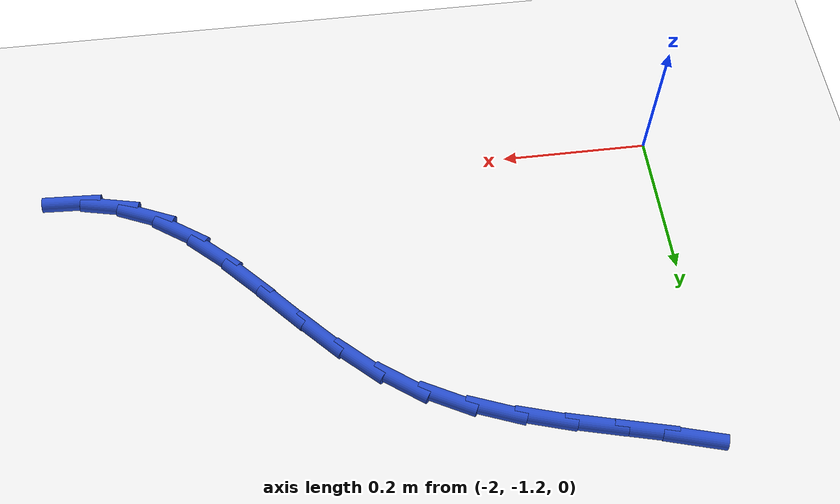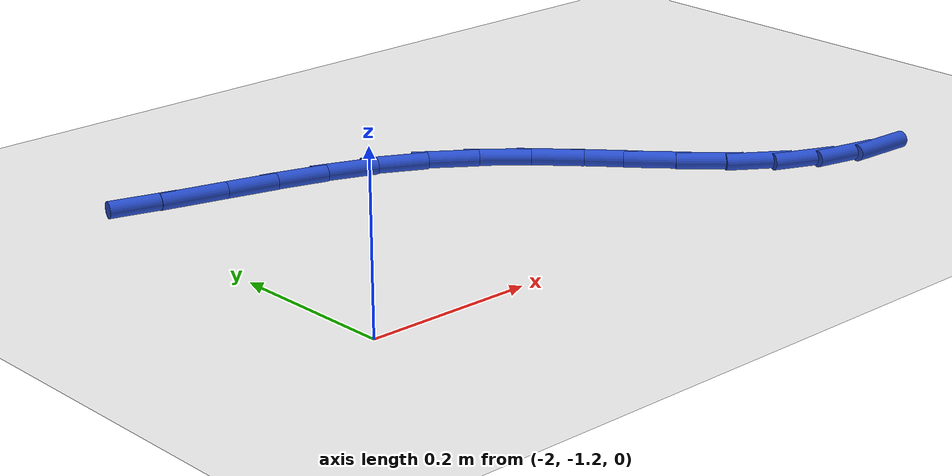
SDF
<sdf version="1.6">
 <world name="default">
  <model name="ground_plane">
   <static>1</static>
   <link name="link">
    <collision name="collision">
     <geometry><plane><normal>0 0 1</normal><size>100 100</size></plane></geometry>
     <surface><friction><ode><mu>100</mu><mu2>50</mu2></ode></friction></surface>
    </collision>
    <visual name="visual">
     <cast_shadows>0</cast_shadows>
     <geometry><plane><normal>0 0 1</normal><size>100 100</size></plane></geometry>
     <material>
      <script><uri>file://media/materials/scripts/gazebo.material</uri><name>Gazebo/WhiteGlow</name></script>
     </material>
    </visual>
   </link>
  </model>
  <model name="line">
   <link name="link_76">
    <pose>-1.9623325319897464 -0.750625685987911 0.01 0 1.57 -0.2778601380412558</pose>
    <collision name="collision">
     <geometry><cylinder><radius>0.01</radius><length>0.08</length></cylinder></geometry>
    </collision>
    <visual name="visual">
     <material>
      <script><name>Gazebo/Blue</name><uri>file://media/materials/scripts/gazebo.material</uri></script>
     </material>
     <geometry><cylinder><radius>0.01</radius><length>0.08</length></cylinder></geometry>
    </visual>
   </link>
   <link name="link_77">
    <pose>-1.9043039008462892 -0.7671777115237406 0.01 0 1.57 -0.24693377652213752</pose>
    <collision name="collision">
     <geometry><cylinder><radius>0.01</radius><length>0.08</length></cylinder></geometry>
    </collision>
    <visual name="visual">
     <material>
      <script><name>Gazebo/Blue</name><uri>file://media/materials/scripts/gazebo.material</uri></script>
     </material>
     <geometry><cylinder><radius>0.01</radius><length>0.08</length></cylinder></geometry>
    </visual>
   </link>
   <link name="link_78">
    <pose>-1.8443729197066259 -0.7822850129532263 0.01 0 1.57 -0.25286901938912215</pose>
    <collision name="collision">
     <geometry><cylinder><radius>0.01</radius><length>0.08</length></cylinder></geometry>
    </collision>
    <visual name="visual">
     <material>
      <script><name>Gazebo/Blue</name><uri>file://media/materials/scripts/gazebo.material</uri></script>
     </material>
     <geometry><cylinder><radius>0.01</radius><length>0.08</length></cylinder></geometry>
    </visual>
   </link>
   <link name="link_79">
    <pose>-1.783863362979549 -0.7979206974235415 0.01 0 1.57 -0.2946446628265971</pose>
    <collision name="collision">
     <geometry><cylinder><radius>0.01</radius><length>0.08</length></cylinder></geometry>
    </collision>
    <visual name="visual">
     <material>
      <script><name>Gazebo/Blue</name><uri>file://media/materials/scripts/gazebo.material</uri></script>
     </material>
     <geometry><cylinder><radius>0.01</radius><length>0.08</length></cylinder></geometry>
    </visual>
   </link>
   <link name="link_80">
    <pose>-1.7240990050738503 -0.8160578720818608 0.01 0 1.57 -0.3735184593387358</pose>
    <collision name="collision">
     <geometry><cylinder><radius>0.01</radius><length>0.08</length></cylinder></geometry>
    </collision>
    <visual name="visual">
     <material>
      <script><name>Gazebo/Blue</name><uri>file://media/materials/scripts/gazebo.material</uri></script>
     </material>
     <geometry><cylinder><radius>0.01</radius><length>0.08</length></cylinder></geometry>
    </visual>
   </link>
   <link name="link_81">
    <pose>-1.66640362039832 -0.838669644075358 0.01 0 1.57 -0.4913623198412964</pose>
    <collision name="collision">
     <geometry><cylinder><radius>0.01</radius><length>0.08</length></cylinder></geometry>
    </collision>
    <visual name="visual">
     <material>
      <script><name>Gazebo/Blue</name><uri>file://media/materials/scripts/gazebo.material</uri></script>
     </material>
     <geometry><cylinder><radius>0.01</radius><length>0.08</length></cylinder></geometry>
    </visual>
   </link>
   <link name="link_82">
    <pose>-1.6121009833617508 -0.8677291205512065 0.01 0 1.57 -0.6374257879594555</pose>
    <collision name="collision">
     <geometry><cylinder><radius>0.01</radius><length>0.08</length></cylinder></geometry>
    </collision>
    <visual name="visual">
     <material>
      <script><name>Gazebo/Blue</name><uri>file://media/materials/scripts/gazebo.material</uri></script>
     </material>
     <geometry><cylinder><radius>0.01</radius><length>0.08</length></cylinder></geometry>
    </visual>
   </link>
   <link name="link_83">
    <pose>-1.5622263052117156 -0.904663826054572 0.01 0 1.57 -0.7520377590005063</pose>
    <collision name="collision">
     <geometry><cylinder><radius>0.01</radius><length>0.08</length></cylinder></geometry>
    </collision>
    <visual name="visual">
     <material>
      <script><name>Gazebo/Blue</name><uri>file://media/materials/scripts/gazebo.material</uri></script>
     </material>
     <geometry><cylinder><radius>0.01</radius><length>0.08</length></cylinder></geometry>
    </visual>
   </link>
   <link name="link_84">
    <pose>-1.5161536753429568 -0.9477606237277734 0.01 0 1.57 -0.8180237362293968</pose>
    <collision name="collision">
     <geometry><cylinder><radius>0.01</radius><length>0.08</length></cylinder></geometry>
    </collision>
    <visual name="visual">
     <material>
      <script><name>Gazebo/Blue</name><uri>file://media/materials/scripts/gazebo.material</uri></script>
     </material>
     <geometry><cylinder><radius>0.01</radius><length>0.08</length></cylinder></geometry>
    </visual>
   </link>
   <link name="link_85">
    <pose>-1.4726639929816867 -0.9941848398049999 0.01 0 1.57 -0.8391297983766156</pose>
    <collision name="collision">
     <geometry><cylinder><radius>0.01</radius><length>0.08</length></cylinder></geometry>
    </collision>
    <visual name="visual">
     <material>
      <script><name>Gazebo/Blue</name><uri>file://media/materials/scripts/gazebo.material</uri></script>
     </material>
     <geometry><cylinder><radius>0.01</radius><length>0.08</length></cylinder></geometry>
    </visual>
   </link>
   <link name="link_86">
    <pose>-1.430537418503994 -1.041100403586153 0.01 0 1.57 -0.8152842432045041</pose>
    <collision name="collision">
     <geometry><cylinder><radius>0.01</radius><length>0.08</length></cylinder></geometry>
    </collision>
    <visual name="visual">
     <material>
      <script><name>Gazebo/Blue</name><uri>file://media/materials/scripts/gazebo.material</uri></script>
     </material>
     <geometry><cylinder><radius>0.01</radius><length>0.08</length></cylinder></geometry>
    </visual>
   </link>
   <link name="link_87">
    <pose>-1.3885541122859655 -1.0856712443711363 0.01 0 1.57 -0.740917711502284</pose>
    <collision name="collision">
     <geometry><cylinder><radius>0.01</radius><length>0.08</length></cylinder></geometry>
    </collision>
    <visual name="visual">
     <material>
      <script><name>Gazebo/Blue</name><uri>file://media/materials/scripts/gazebo.material</uri></script>
     </material>
     <geometry><cylinder><radius>0.01</radius><length>0.08</length></cylinder></geometry>
    </visual>
   </link>
   <link name="link_88">
    <pose>-1.345494234703689 -1.1250612914598517 0.01 0 1.57 -0.6051405959667558</pose>
    <collision name="collision">
     <geometry><cylinder><radius>0.01</radius><length>0.08</length></cylinder></geometry>
    </collision>
    <visual name="visual">
     <material>
      <script><name>Gazebo/Blue</name><uri>file://media/materials/scripts/gazebo.material</uri></script>
     </material>
     <geometry><cylinder><radius>0.01</radius><length>0.08</length></cylinder></geometry>
    </visual>
   </link>
   <link name="link_89">
    <pose>-1.3001380215777676 -1.156434643367185 0.01 0 1.57 -0.4127621117511218</pose>
    <collision name="collision">
     <geometry><cylinder><radius>0.01</radius><length>0.08</length></cylinder></geometry>
    </collision>
    <visual name="visual">
     <material>
      <script><name>Gazebo/Blue</name><uri>file://media/materials/scripts/gazebo.material</uri></script>
     </material>
     <geometry><cylinder><radius>0.01</radius><length>0.08</length></cylinder></geometry>
    </visual>
   </link>
   <link name="link_90">
    <pose>-1.2515944736768503 -1.1776927875781218 0.01 0 1.57 -0.2190169182047165</pose>
    <collision name="collision">
     <geometry><cylinder><radius>0.01</radius><length>0.08</length></cylinder></geometry>
    </collision>
    <visual name="visual">
     <material>
      <script><name>Gazebo/Blue</name><uri>file://media/materials/scripts/gazebo.material</uri></script>
     </material>
     <geometry><cylinder><radius>0.01</radius><length>0.08</length></cylinder></geometry>
    </visual>
   </link>
   <link name="link_91">
    <pose>-1.2000549487145296 -1.1891648367781806 0.01 0 1.57 -0.04641599734663544</pose>
    <collision name="collision">
     <geometry><cylinder><radius>0.01</radius><length>0.08</length></cylinder></geometry>
    </collision>
    <visual name="visual">
     <material>
      <script><name>Gazebo/Blue</name><uri>file://media/materials/scripts/gazebo.material</uri></script>
     </material>
     <geometry><cylinder><radius>0.01</radius><length>0.08</length></cylinder></geometry>
    </visual>
   </link>
  </model>
 </world>
</sdf>
